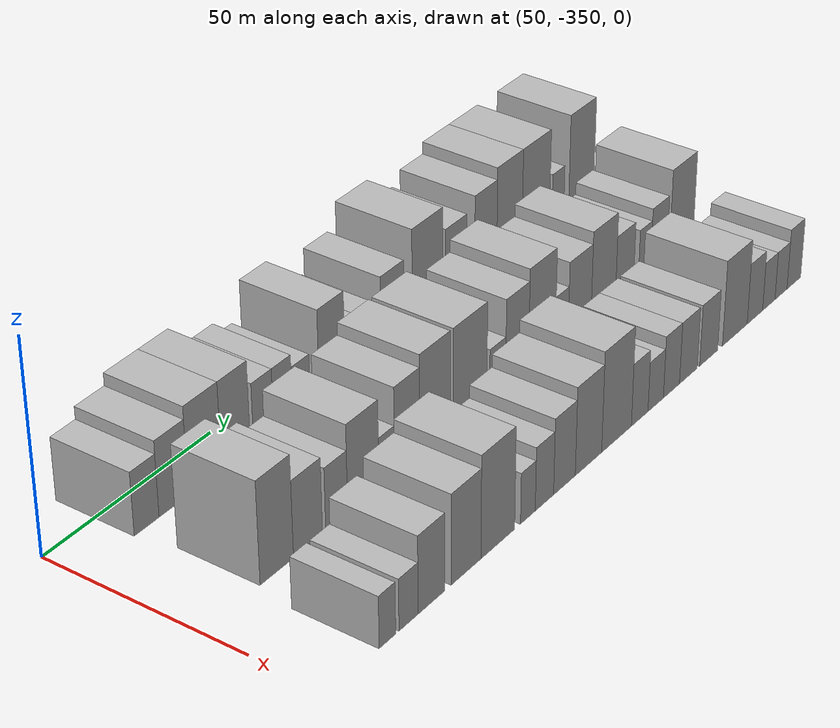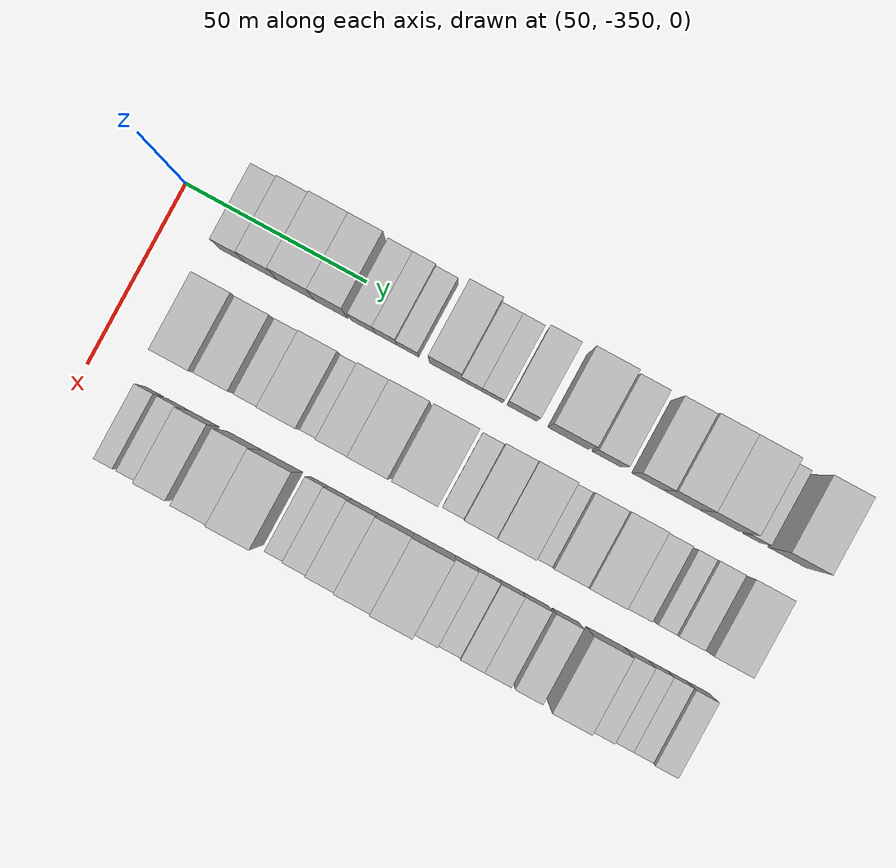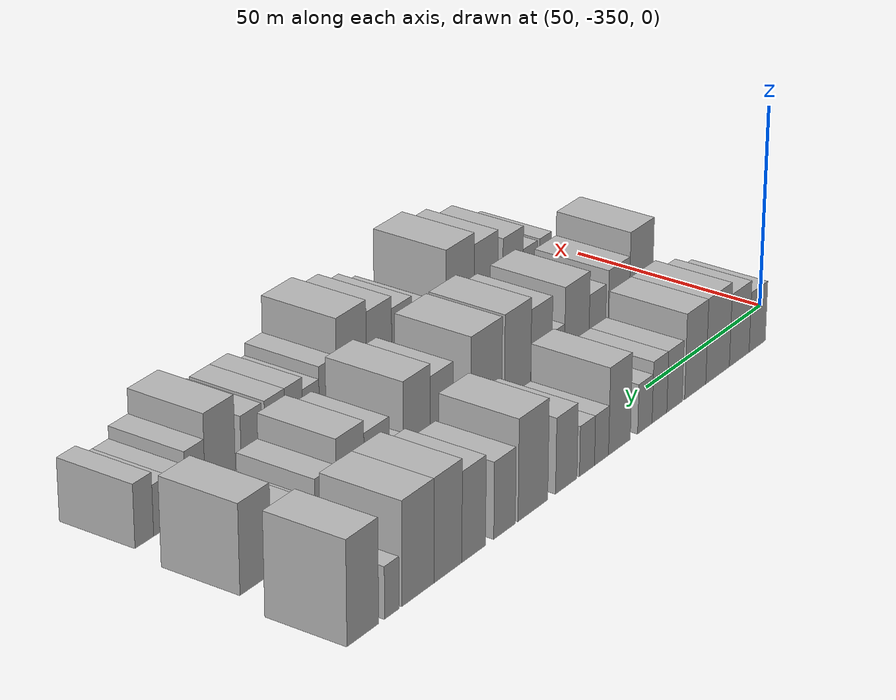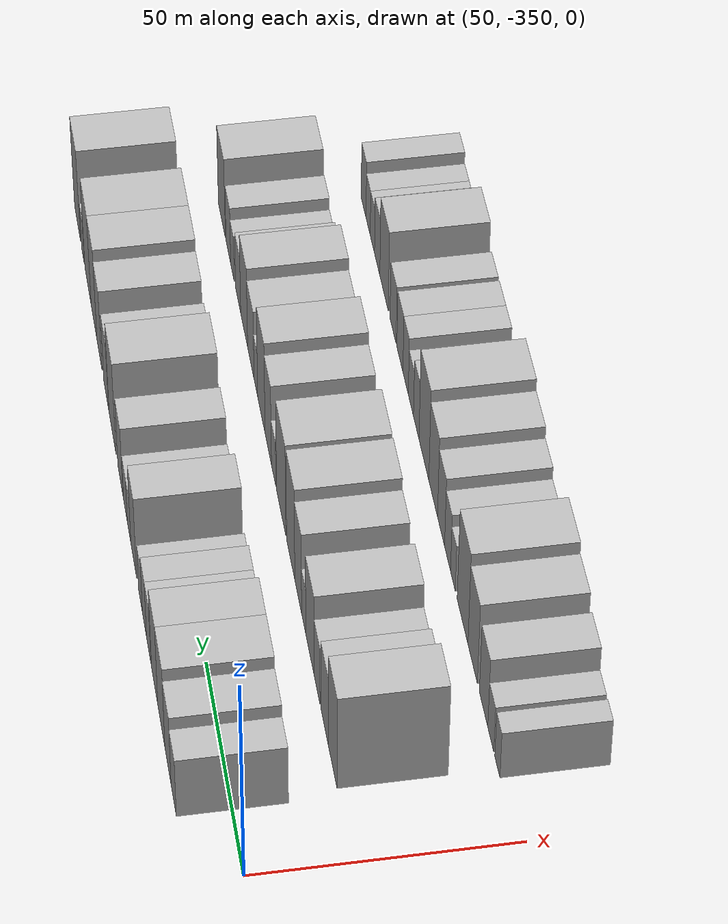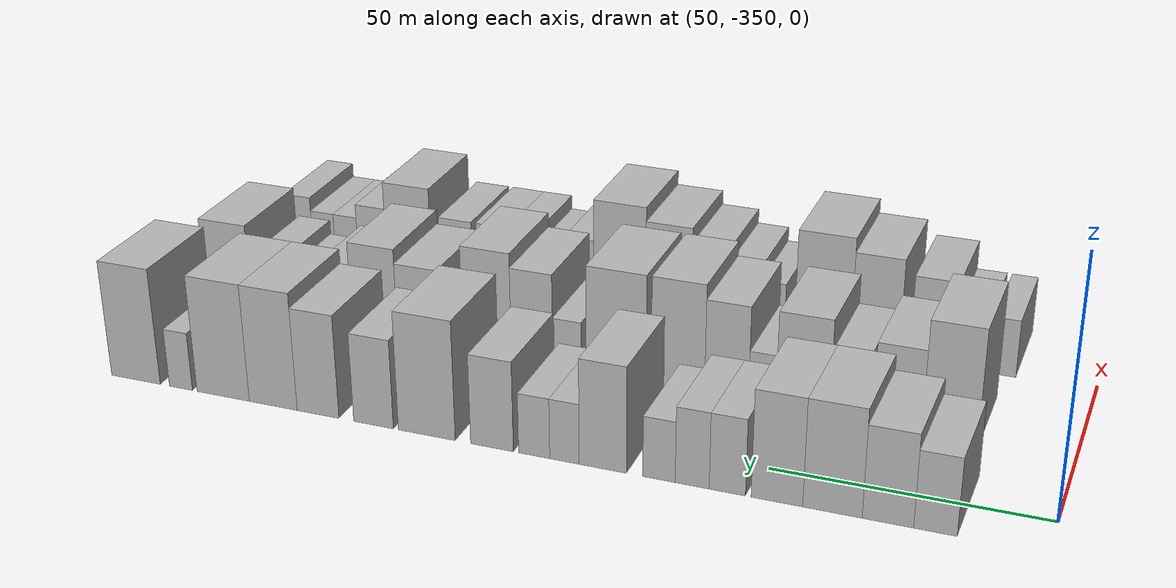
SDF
<sdf version="1.6">
 <world name="default">
  <model name="building_1">
   <static>1</static>
   <pose>50.0000 -331.3577 0 0.000000 0.000000 0.000000</pose>
   <link name="link">
    <pose>0 0 7.50 0 0 0</pose>
    <collision name="collision"><geometry><box><size>20.0000 7.2847 15.0000</size></box></geometry></collision>
    <visual name="visual">
     <cast_shadows>0</cast_shadows>
     <geometry><box><size>20.0000 7.2847 15.0000</size></box></geometry>
     <material>
      <script>
       <uri>model://HANNAS_wall/materials/scripts</uri>
       <uri>model://HANNAS_wall/materials/textures</uri>
       <name>vrc/HANNAS_wall</name>
      </script>
     </material>
    </visual>
   </link>
  </model>
  <model name="building_2">
   <static>1</static>
   <pose>50.0000 -323.3517 0 0.000000 0.000000 0.000000</pose>
   <link name="link">
    <pose>0 0 9.00 0 0 0</pose>
    <collision name="collision"><geometry><box><size>20.0000 8.7272 18.0000</size></box></geometry></collision>
    <visual name="visual">
     <cast_shadows>0</cast_shadows>
     <geometry><box><size>20.0000 8.7272 18.0000</size></box></geometry>
     <material>
      <script>
       <uri>model://HANNAS_wall/materials/scripts</uri>
       <uri>model://HANNAS_wall/materials/textures</uri>
       <name>vrc/HANNAS_wall</name>
      </script>
     </material>
    </visual>
   </link>
  </model>
  <model name="building_3">
   <static>1</static>
   <pose>50.0000 -313.8566 0 0.000000 0.000000 0.000000</pose>
   <link name="link">
    <pose>0 0 10.50 0 0 0</pose>
    <collision name="collision"><geometry><box><size>20.0000 10.2631 21.0000</size></box></geometry></collision>
    <visual name="visual">
     <cast_shadows>0</cast_shadows>
     <geometry><box><size>20.0000 10.2631 21.0000</size></box></geometry>
     <material>
      <script>
       <uri>model://HANNAS_wall/materials/scripts</uri>
       <uri>model://HANNAS_wall/materials/textures</uri>
       <name>vrc/HANNAS_wall</name>
      </script>
     </material>
    </visual>
   </link>
  </model>
  <model name="building_4">
   <static>1</static>
   <pose>50.0000 -304.1938 0 0.000000 0.000000 0.000000</pose>
   <link name="link">
    <pose>0 0 10.50 0 0 0</pose>
    <collision name="collision"><geometry><box><size>20.0000 9.0625 21.0000</size></box></geometry></collision>
    <visual name="visual">
     <cast_shadows>0</cast_shadows>
     <geometry><box><size>20.0000 9.0625 21.0000</size></box></geometry>
     <material>
      <script>
       <uri>model://HANNAS_wall/materials/scripts</uri>
       <uri>model://HANNAS_wall/materials/textures</uri>
       <name>vrc/HANNAS_wall</name>
      </script>
     </material>
    </visual>
   </link>
  </model>
  <model name="building_5">
   <static>1</static>
   <pose>50.0000 -295.4204 0 0.000000 0.000000 0.000000</pose>
   <link name="link">
    <pose>0 0 7.50 0 0 0</pose>
    <collision name="collision"><geometry><box><size>20.0000 6.4842 15.0000</size></box></geometry></collision>
    <visual name="visual">
     <cast_shadows>0</cast_shadows>
     <geometry><box><size>20.0000 6.4842 15.0000</size></box></geometry>
     <material>
      <script>
       <uri>model://HANNAS_wall/materials/scripts</uri>
       <uri>model://HANNAS_wall/materials/textures</uri>
       <name>vrc/HANNAS_wall</name>
      </script>
     </material>
    </visual>
   </link>
  </model>
  <model name="building_6">
   <static>1</static>
   <pose>50.0000 -289.1117 0 0.000000 0.000000 0.000000</pose>
   <link name="link">
    <pose>0 0 7.50 0 0 0</pose>
    <collision name="collision"><geometry><box><size>20.0000 6.1332 15.0000</size></box></geometry></collision>
    <visual name="visual">
     <cast_shadows>0</cast_shadows>
     <geometry><box><size>20.0000 6.1332 15.0000</size></box></geometry>
     <material>
      <script>
       <uri>model://HANNAS_wall/materials/scripts</uri>
       <uri>model://HANNAS_wall/materials/textures</uri>
       <name>vrc/HANNAS_wall</name>
      </script>
     </material>
    </visual>
   </link>
  </model>
  <model name="building_7">
   <static>1</static>
   <pose>50.0000 -283.0841 0 0.000000 0.000000 0.000000</pose>
   <link name="link">
    <pose>0 0 6.00 0 0 0</pose>
    <collision name="collision"><geometry><box><size>20.0000 5.9221 12.0000</size></box></geometry></collision>
    <visual name="visual">
     <cast_shadows>0</cast_shadows>
     <geometry><box><size>20.0000 5.9221 12.0000</size></box></geometry>
     <material>
      <script>
       <uri>model://HANNAS_wall/materials/scripts</uri>
       <uri>model://HANNAS_wall/materials/textures</uri>
       <name>vrc/HANNAS_wall</name>
      </script>
     </material>
    </visual>
   </link>
  </model>
  <model name="building_8">
   <static>1</static>
   <pose>50.0000 -272.7275 0 0.000000 0.000000 0.000000</pose>
   <link name="link">
    <pose>0 0 10.50 0 0 0</pose>
    <collision name="collision"><geometry><box><size>20.0000 8.7911 21.0000</size></box></geometry></collision>
    <visual name="visual">
     <cast_shadows>0</cast_shadows>
     <geometry><box><size>20.0000 8.7911 21.0000</size></box></geometry>
     <material>
      <script>
       <uri>model://HANNAS_wall/materials/scripts</uri>
       <uri>model://HANNAS_wall/materials/textures</uri>
       <name>vrc/HANNAS_wall</name>
      </script>
     </material>
    </visual>
   </link>
  </model>
  <model name="building_9">
   <static>1</static>
   <pose>50.0000 -265.5425 0 0.000000 0.000000 0.000000</pose>
   <link name="link">
    <pose>0 0 6.00 0 0 0</pose>
    <collision name="collision"><geometry><box><size>20.0000 5.5788 12.0000</size></box></geometry></collision>
    <visual name="visual">
     <cast_shadows>0</cast_shadows>
     <geometry><box><size>20.0000 5.5788 12.0000</size></box></geometry>
     <material>
      <script>
       <uri>model://HANNAS_wall/materials/scripts</uri>
       <uri>model://HANNAS_wall/materials/textures</uri>
       <name>vrc/HANNAS_wall</name>
      </script>
     </material>
    </visual>
   </link>
  </model>
  <model name="building_10">
   <static>1</static>
   <pose>50.0000 -259.7928 0 0.000000 0.000000 0.000000</pose>
   <link name="link">
    <pose>0 0 6.00 0 0 0</pose>
    <collision name="collision"><geometry><box><size>20.0000 5.9206 12.0000</size></box></geometry></collision>
    <visual name="visual">
     <cast_shadows>0</cast_shadows>
     <geometry><box><size>20.0000 5.9206 12.0000</size></box></geometry>
     <material>
      <script>
       <uri>model://HANNAS_wall/materials/scripts</uri>
       <uri>model://HANNAS_wall/materials/textures</uri>
       <name>vrc/HANNAS_wall</name>
      </script>
     </material>
    </visual>
   </link>
  </model>
  <model name="building_11">
   <static>1</static>
   <pose>50.0000 -251.6989 0 0.000000 0.000000 0.000000</pose>
   <link name="link">
    <pose>0 0 9.00 0 0 0</pose>
    <collision name="collision"><geometry><box><size>20.0000 8.2673 18.0000</size></box></geometry></collision>
    <visual name="visual">
     <cast_shadows>0</cast_shadows>
     <geometry><box><size>20.0000 8.2673 18.0000</size></box></geometry>
     <material>
      <script>
       <uri>model://HANNAS_wall/materials/scripts</uri>
       <uri>model://HANNAS_wall/materials/textures</uri>
       <name>vrc/HANNAS_wall</name>
      </script>
     </material>
    </visual>
   </link>
  </model>
  <model name="building_12">
   <static>1</static>
   <pose>50.0000 -238.9440 0 0.000000 0.000000 0.000000</pose>
   <link name="link">
    <pose>0 0 12.00 0 0 0</pose>
    <collision name="collision"><geometry><box><size>20.0000 11.2425 24.0000</size></box></geometry></collision>
    <visual name="visual">
     <cast_shadows>0</cast_shadows>
     <geometry><box><size>20.0000 11.2425 24.0000</size></box></geometry>
     <material>
      <script>
       <uri>model://HANNAS_wall/materials/scripts</uri>
       <uri>model://HANNAS_wall/materials/textures</uri>
       <name>vrc/HANNAS_wall</name>
      </script>
     </material>
    </visual>
   </link>
  </model>
  <model name="building_13">
   <static>1</static>
   <pose>50.0000 -228.3245 0 0.000000 0.000000 0.000000</pose>
   <link name="link">
    <pose>0 0 9.00 0 0 0</pose>
    <collision name="collision"><geometry><box><size>20.0000 7.9965 18.0000</size></box></geometry></collision>
    <visual name="visual">
     <cast_shadows>0</cast_shadows>
     <geometry><box><size>20.0000 7.9965 18.0000</size></box></geometry>
     <material>
      <script>
       <uri>model://HANNAS_wall/materials/scripts</uri>
       <uri>model://HANNAS_wall/materials/textures</uri>
       <name>vrc/HANNAS_wall</name>
      </script>
     </material>
    </visual>
   </link>
  </model>
  <model name="building_14">
   <static>1</static>
   <pose>50.0000 -217.0393 0 0.000000 0.000000 0.000000</pose>
   <link name="link">
    <pose>0 0 10.50 0 0 0</pose>
    <collision name="collision"><geometry><box><size>20.0000 8.5739 21.0000</size></box></geometry></collision>
    <visual name="visual">
     <cast_shadows>0</cast_shadows>
     <geometry><box><size>20.0000 8.5739 21.0000</size></box></geometry>
     <material>
      <script>
       <uri>model://HANNAS_wall/materials/scripts</uri>
       <uri>model://HANNAS_wall/materials/textures</uri>
       <name>vrc/HANNAS_wall</name>
      </script>
     </material>
    </visual>
   </link>
  </model>
  <model name="building_15">
   <static>1</static>
   <pose>50.0000 -207.7493 0 0.000000 0.000000 0.000000</pose>
   <link name="link">
    <pose>0 0 12.00 0 0 0</pose>
    <collision name="collision"><geometry><box><size>20.0000 10.0060 24.0000</size></box></geometry></collision>
    <visual name="visual">
     <cast_shadows>0</cast_shadows>
     <geometry><box><size>20.0000 10.0060 24.0000</size></box></geometry>
     <material>
      <script>
       <uri>model://HANNAS_wall/materials/scripts</uri>
       <uri>model://HANNAS_wall/materials/textures</uri>
       <name>vrc/HANNAS_wall</name>
      </script>
     </material>
    </visual>
   </link>
  </model>
  <model name="building_16">
   <static>1</static>
   <pose>50.0000 -197.1931 0 0.000000 0.000000 0.000000</pose>
   <link name="link">
    <pose>0 0 12.00 0 0 0</pose>
    <collision name="collision"><geometry><box><size>20.0000 11.1064 24.0000</size></box></geometry></collision>
    <visual name="visual">
     <cast_shadows>0</cast_shadows>
     <geometry><box><size>20.0000 11.1064 24.0000</size></box></geometry>
     <material>
      <script>
       <uri>model://HANNAS_wall/materials/scripts</uri>
       <uri>model://HANNAS_wall/materials/textures</uri>
       <name>vrc/HANNAS_wall</name>
      </script>
     </material>
    </visual>
   </link>
  </model>
  <model name="building_17">
   <static>1</static>
   <pose>50.0000 -188.1655 0 0.000000 0.000000 0.000000</pose>
   <link name="link">
    <pose>0 0 6.00 0 0 0</pose>
    <collision name="collision"><geometry><box><size>20.0000 4.9488 12.0000</size></box></geometry></collision>
    <visual name="visual">
     <cast_shadows>0</cast_shadows>
     <geometry><box><size>20.0000 4.9488 12.0000</size></box></geometry>
     <material>
      <script>
       <uri>model://HANNAS_wall/materials/scripts</uri>
       <uri>model://HANNAS_wall/materials/textures</uri>
       <name>vrc/HANNAS_wall</name>
      </script>
     </material>
    </visual>
   </link>
  </model>
  <model name="building_18">
   <static>1</static>
   <pose>50.0000 -178.3709 0 0.000000 0.000000 0.000000</pose>
   <link name="link">
    <pose>0 0 12.00 0 0 0</pose>
    <collision name="collision"><geometry><box><size>20.0000 10.6405 24.0000</size></box></geometry></collision>
    <visual name="visual">
     <cast_shadows>0</cast_shadows>
     <geometry><box><size>20.0000 10.6405 24.0000</size></box></geometry>
     <material>
      <script>
       <uri>model://HANNAS_wall/materials/scripts</uri>
       <uri>model://HANNAS_wall/materials/textures</uri>
       <name>vrc/HANNAS_wall</name>
      </script>
     </material>
    </visual>
   </link>
  </model>
  <model name="building_77">
   <static>1</static>
   <pose>79.0000 -327.9480 0 0.000000 0.000000 0.000000</pose>
   <link name="link">
    <pose>0 0 12.00 0 0 0</pose>
    <collision name="collision"><geometry><box><size>20.0000 10.1040 24.0000</size></box></geometry></collision>
    <visual name="visual">
     <cast_shadows>0</cast_shadows>
     <geometry><box><size>20.0000 10.1040 24.0000</size></box></geometry>
     <material>
      <script>
       <uri>model://HANNAS_wall/materials/scripts</uri>
       <uri>model://HANNAS_wall/materials/textures</uri>
       <name>vrc/HANNAS_wall</name>
      </script>
     </material>
    </visual>
   </link>
  </model>
  <model name="building_78">
   <static>1</static>
   <pose>79.0000 -318.4048 0 0.000000 0.000000 0.000000</pose>
   <link name="link">
    <pose>0 0 9.00 0 0 0</pose>
    <collision name="collision"><geometry><box><size>20.0000 8.9824 18.0000</size></box></geometry></collision>
    <visual name="visual">
     <cast_shadows>0</cast_shadows>
     <geometry><box><size>20.0000 8.9824 18.0000</size></box></geometry>
     <material>
      <script>
       <uri>model://HANNAS_wall/materials/scripts</uri>
       <uri>model://HANNAS_wall/materials/textures</uri>
       <name>vrc/HANNAS_wall</name>
      </script>
     </material>
    </visual>
   </link>
  </model>
  <model name="building_79">
   <static>1</static>
   <pose>79.0000 -309.4209 0 0.000000 0.000000 0.000000</pose>
   <link name="link">
    <pose>0 0 7.50 0 0 0</pose>
    <collision name="collision"><geometry><box><size>20.0000 6.9855 15.0000</size></box></geometry></collision>
    <visual name="visual">
     <cast_shadows>0</cast_shadows>
     <geometry><box><size>20.0000 6.9855 15.0000</size></box></geometry>
     <material>
      <script>
       <uri>model://HANNAS_wall/materials/scripts</uri>
       <uri>model://HANNAS_wall/materials/textures</uri>
       <name>vrc/HANNAS_wall</name>
      </script>
     </material>
    </visual>
   </link>
  </model>
  <model name="building_80">
   <static>1</static>
   <pose>79.0000 -300.8569 0 0.000000 0.000000 0.000000</pose>
   <link name="link">
    <pose>0 0 10.50 0 0 0</pose>
    <collision name="collision"><geometry><box><size>20.0000 10.1425 21.0000</size></box></geometry></collision>
    <visual name="visual">
     <cast_shadows>0</cast_shadows>
     <geometry><box><size>20.0000 10.1425 21.0000</size></box></geometry>
     <material>
      <script>
       <uri>model://HANNAS_wall/materials/scripts</uri>
       <uri>model://HANNAS_wall/materials/textures</uri>
       <name>vrc/HANNAS_wall</name>
      </script>
     </material>
    </visual>
   </link>
  </model>
  <model name="building_81">
   <static>1</static>
   <pose>79.0000 -293.1982 0 0.000000 0.000000 0.000000</pose>
   <link name="link">
    <pose>0 0 6.00 0 0 0</pose>
    <collision name="collision"><geometry><box><size>20.0000 5.1748 12.0000</size></box></geometry></collision>
    <visual name="visual">
     <cast_shadows>0</cast_shadows>
     <geometry><box><size>20.0000 5.1748 12.0000</size></box></geometry>
     <material>
      <script>
       <uri>model://HANNAS_wall/materials/scripts</uri>
       <uri>model://HANNAS_wall/materials/textures</uri>
       <name>vrc/HANNAS_wall</name>
      </script>
     </material>
    </visual>
   </link>
  </model>
  <model name="building_82">
   <static>1</static>
   <pose>79.0000 -286.3740 0 0.000000 0.000000 0.000000</pose>
   <link name="link">
    <pose>0 0 10.50 0 0 0</pose>
    <collision name="collision"><geometry><box><size>20.0000 8.4737 21.0000</size></box></geometry></collision>
    <visual name="visual">
     <cast_shadows>0</cast_shadows>
     <geometry><box><size>20.0000 8.4737 21.0000</size></box></geometry>
     <material>
      <script>
       <uri>model://HANNAS_wall/materials/scripts</uri>
       <uri>model://HANNAS_wall/materials/textures</uri>
       <name>vrc/HANNAS_wall</name>
      </script>
     </material>
    </visual>
   </link>
  </model>
  <model name="building_83">
   <static>1</static>
   <pose>79.0000 -276.9082 0 0.000000 0.000000 0.000000</pose>
   <link name="link">
    <pose>0 0 12.00 0 0 0</pose>
    <collision name="collision"><geometry><box><size>20.0000 10.4578 24.0000</size></box></geometry></collision>
    <visual name="visual">
     <cast_shadows>0</cast_shadows>
     <geometry><box><size>20.0000 10.4578 24.0000</size></box></geometry>
     <material>
      <script>
       <uri>model://HANNAS_wall/materials/scripts</uri>
       <uri>model://HANNAS_wall/materials/textures</uri>
       <name>vrc/HANNAS_wall</name>
      </script>
     </material>
    </visual>
   </link>
  </model>
  <model name="building_84">
   <static>1</static>
   <pose>79.0000 -264.6963 0 0.000000 0.000000 0.000000</pose>
   <link name="link">
    <pose>0 0 12.00 0 0 0</pose>
    <collision name="collision"><geometry><box><size>20.0000 11.9660 24.0000</size></box></geometry></collision>
    <visual name="visual">
     <cast_shadows>0</cast_shadows>
     <geometry><box><size>20.0000 11.9660 24.0000</size></box></geometry>
     <material>
      <script>
       <uri>model://HANNAS_wall/materials/scripts</uri>
       <uri>model://HANNAS_wall/materials/textures</uri>
       <name>vrc/HANNAS_wall</name>
      </script>
     </material>
    </visual>
   </link>
  </model>
  <model name="building_85">
   <static>1</static>
   <pose>79.0000 -254.8175 0 0.000000 0.000000 0.000000</pose>
   <link name="link">
    <pose>0 0 6.00 0 0 0</pose>
    <collision name="collision"><geometry><box><size>20.0000 5.7916 12.0000</size></box></geometry></collision>
    <visual name="visual">
     <cast_shadows>0</cast_shadows>
     <geometry><box><size>20.0000 5.7916 12.0000</size></box></geometry>
     <material>
      <script>
       <uri>model://HANNAS_wall/materials/scripts</uri>
       <uri>model://HANNAS_wall/materials/textures</uri>
       <name>vrc/HANNAS_wall</name>
      </script>
     </material>
    </visual>
   </link>
  </model>
  <model name="building_86">
   <static>1</static>
   <pose>79.0000 -247.6663 0 0.000000 0.000000 0.000000</pose>
   <link name="link">
    <pose>0 0 10.50 0 0 0</pose>
    <collision name="collision"><geometry><box><size>20.0000 8.5108 21.0000</size></box></geometry></collision>
    <visual name="visual">
     <cast_shadows>0</cast_shadows>
     <geometry><box><size>20.0000 8.5108 21.0000</size></box></geometry>
     <material>
      <script>
       <uri>model://HANNAS_wall/materials/scripts</uri>
       <uri>model://HANNAS_wall/materials/textures</uri>
       <name>vrc/HANNAS_wall</name>
      </script>
     </material>
    </visual>
   </link>
  </model>
  <model name="building_87">
   <static>1</static>
   <pose>79.0000 -238.3694 0 0.000000 0.000000 0.000000</pose>
   <link name="link">
    <pose>0 0 12.00 0 0 0</pose>
    <collision name="collision"><geometry><box><size>20.0000 10.0830 24.0000</size></box></geometry></collision>
    <visual name="visual">
     <cast_shadows>0</cast_shadows>
     <geometry><box><size>20.0000 10.0830 24.0000</size></box></geometry>
     <material>
      <script>
       <uri>model://HANNAS_wall/materials/scripts</uri>
       <uri>model://HANNAS_wall/materials/textures</uri>
       <name>vrc/HANNAS_wall</name>
      </script>
     </material>
    </visual>
   </link>
  </model>
  <model name="building_88">
   <static>1</static>
   <pose>79.0000 -230.8226 0 0.000000 0.000000 0.000000</pose>
   <link name="link">
    <pose>0 0 6.00 0 0 0</pose>
    <collision name="collision"><geometry><box><size>20.0000 5.0105 12.0000</size></box></geometry></collision>
    <visual name="visual">
     <cast_shadows>0</cast_shadows>
     <geometry><box><size>20.0000 5.0105 12.0000</size></box></geometry>
     <material>
      <script>
       <uri>model://HANNAS_wall/materials/scripts</uri>
       <uri>model://HANNAS_wall/materials/textures</uri>
       <name>vrc/HANNAS_wall</name>
      </script>
     </material>
    </visual>
   </link>
  </model>
  <model name="building_89">
   <static>1</static>
   <pose>79.0000 -223.8250 0 0.000000 0.000000 0.000000</pose>
   <link name="link">
    <pose>0 0 9.00 0 0 0</pose>
    <collision name="collision"><geometry><box><size>20.0000 8.9848 18.0000</size></box></geometry></collision>
    <visual name="visual">
     <cast_shadows>0</cast_shadows>
     <geometry><box><size>20.0000 8.9848 18.0000</size></box></geometry>
     <material>
      <script>
       <uri>model://HANNAS_wall/materials/scripts</uri>
       <uri>model://HANNAS_wall/materials/textures</uri>
       <name>vrc/HANNAS_wall</name>
      </script>
     </material>
    </visual>
   </link>
  </model>
  <model name="building_90">
   <static>1</static>
   <pose>79.0000 -214.4246 0 0.000000 0.000000 0.000000</pose>
   <link name="link">
    <pose>0 0 10.50 0 0 0</pose>
    <collision name="collision"><geometry><box><size>20.0000 9.8161 21.0000</size></box></geometry></collision>
    <visual name="visual">
     <cast_shadows>0</cast_shadows>
     <geometry><box><size>20.0000 9.8161 21.0000</size></box></geometry>
     <material>
      <script>
       <uri>model://HANNAS_wall/materials/scripts</uri>
       <uri>model://HANNAS_wall/materials/textures</uri>
       <name>vrc/HANNAS_wall</name>
      </script>
     </material>
    </visual>
   </link>
  </model>
  <model name="building_91">
   <static>1</static>
   <pose>79.0000 -205.8289 0 0.000000 0.000000 0.000000</pose>
   <link name="link">
    <pose>0 0 7.50 0 0 0</pose>
    <collision name="collision"><geometry><box><size>20.0000 7.3753 15.0000</size></box></geometry></collision>
    <visual name="visual">
     <cast_shadows>0</cast_shadows>
     <geometry><box><size>20.0000 7.3753 15.0000</size></box></geometry>
     <material>
      <script>
       <uri>model://HANNAS_wall/materials/scripts</uri>
       <uri>model://HANNAS_wall/materials/textures</uri>
       <name>vrc/HANNAS_wall</name>
      </script>
     </material>
    </visual>
   </link>
  </model>
  <model name="building_92">
   <static>1</static>
   <pose>79.0000 -197.6131 0 0.000000 0.000000 0.000000</pose>
   <link name="link">
    <pose>0 0 6.00 0 0 0</pose>
    <collision name="collision"><geometry><box><size>20.0000 5.0563 12.0000</size></box></geometry></collision>
    <visual name="visual">
     <cast_shadows>0</cast_shadows>
     <geometry><box><size>20.0000 5.0563 12.0000</size></box></geometry>
     <material>
      <script>
       <uri>model://HANNAS_wall/materials/scripts</uri>
       <uri>model://HANNAS_wall/materials/textures</uri>
       <name>vrc/HANNAS_wall</name>
      </script>
     </material>
    </visual>
   </link>
  </model>
  <model name="building_93">
   <static>1</static>
   <pose>79.0000 -191.6143 0 0.000000 0.000000 0.000000</pose>
   <link name="link">
    <pose>0 0 7.50 0 0 0</pose>
    <collision name="collision"><geometry><box><size>20.0000 6.9414 15.0000</size></box></geometry></collision>
    <visual name="visual">
     <cast_shadows>0</cast_shadows>
     <geometry><box><size>20.0000 6.9414 15.0000</size></box></geometry>
     <material>
      <script>
       <uri>model://HANNAS_wall/materials/scripts</uri>
       <uri>model://HANNAS_wall/materials/textures</uri>
       <name>vrc/HANNAS_wall</name>
      </script>
     </material>
    </visual>
   </link>
  </model>
  <model name="building_94">
   <static>1</static>
   <pose>79.0000 -181.9602 0 0.000000 0.000000 0.000000</pose>
   <link name="link">
    <pose>0 0 10.50 0 0 0</pose>
    <collision name="collision"><geometry><box><size>20.0000 10.3668 21.0000</size></box></geometry></collision>
    <visual name="visual">
     <cast_shadows>0</cast_shadows>
     <geometry><box><size>20.0000 10.3668 21.0000</size></box></geometry>
     <material>
      <script>
       <uri>model://HANNAS_wall/materials/scripts</uri>
       <uri>model://HANNAS_wall/materials/textures</uri>
       <name>vrc/HANNAS_wall</name>
      </script>
     </material>
    </visual>
   </link>
  </model>
  <model name="building_153">
   <static>1</static>
   <pose>108.0000 -332.4731 0 0.000000 0.000000 0.000000</pose>
   <link name="link">
    <pose>0 0 6.00 0 0 0</pose>
    <collision name="collision"><geometry><box><size>20.0000 5.0538 12.0000</size></box></geometry></collision>
    <visual name="visual">
     <cast_shadows>0</cast_shadows>
     <geometry><box><size>20.0000 5.0538 12.0000</size></box></geometry>
     <material>
      <script>
       <uri>model://HANNAS_wall/materials/scripts</uri>
       <uri>model://HANNAS_wall/materials/textures</uri>
       <name>vrc/HANNAS_wall</name>
      </script>
     </material>
    </visual>
   </link>
  </model>
  <model name="building_154">
   <static>1</static>
   <pose>108.0000 -325.9662 0 0.000000 0.000000 0.000000</pose>
   <link name="link">
    <pose>0 0 6.00 0 0 0</pose>
    <collision name="collision"><geometry><box><size>20.0000 5.9600 12.0000</size></box></geometry></collision>
    <visual name="visual">
     <cast_shadows>0</cast_shadows>
     <geometry><box><size>20.0000 5.9600 12.0000</size></box></geometry>
     <material>
      <script>
       <uri>model://HANNAS_wall/materials/scripts</uri>
       <uri>model://HANNAS_wall/materials/textures</uri>
       <name>vrc/HANNAS_wall</name>
      </script>
     </material>
    </visual>
   </link>
  </model>
  <model name="building_155">
   <static>1</static>
   <pose>108.0000 -318.7284 0 0.000000 0.000000 0.000000</pose>
   <link name="link">
    <pose>0 0 9.00 0 0 0</pose>
    <collision name="collision"><geometry><box><size>20.0000 8.5156 18.0000</size></box></geometry></collision>
    <visual name="visual">
     <cast_shadows>0</cast_shadows>
     <geometry><box><size>20.0000 8.5156 18.0000</size></box></geometry>
     <material>
      <script>
       <uri>model://HANNAS_wall/materials/scripts</uri>
       <uri>model://HANNAS_wall/materials/textures</uri>
       <name>vrc/HANNAS_wall</name>
      </script>
     </material>
    </visual>
   </link>
  </model>
  <model name="building_156">
   <static>1</static>
   <pose>108.0000 -307.6199 0 0.000000 0.000000 0.000000</pose>
   <link name="link">
    <pose>0 0 10.50 0 0 0</pose>
    <collision name="collision"><geometry><box><size>20.0000 9.7013 21.0000</size></box></geometry></collision>
    <visual name="visual">
     <cast_shadows>0</cast_shadows>
     <geometry><box><size>20.0000 9.7013 21.0000</size></box></geometry>
     <material>
      <script>
       <uri>model://HANNAS_wall/materials/scripts</uri>
       <uri>model://HANNAS_wall/materials/textures</uri>
       <name>vrc/HANNAS_wall</name>
      </script>
     </material>
    </visual>
   </link>
  </model>
  <model name="building_157">
   <static>1</static>
   <pose>108.0000 -297.1060 0 0.000000 0.000000 0.000000</pose>
   <link name="link">
    <pose>0 0 12.00 0 0 0</pose>
    <collision name="collision"><geometry><box><size>20.0000 11.3266 24.0000</size></box></geometry></collision>
    <visual name="visual">
     <cast_shadows>0</cast_shadows>
     <geometry><box><size>20.0000 11.3266 24.0000</size></box></geometry>
     <material>
      <script>
       <uri>model://HANNAS_wall/materials/scripts</uri>
       <uri>model://HANNAS_wall/materials/textures</uri>
       <name>vrc/HANNAS_wall</name>
      </script>
     </material>
    </visual>
   </link>
  </model>
  <model name="building_158">
   <static>1</static>
   <pose>108.0000 -286.8947 0 0.000000 0.000000 0.000000</pose>
   <link name="link">
    <pose>0 0 6.00 0 0 0</pose>
    <collision name="collision"><geometry><box><size>20.0000 5.0960 12.0000</size></box></geometry></collision>
    <visual name="visual">
     <cast_shadows>0</cast_shadows>
     <geometry><box><size>20.0000 5.0960 12.0000</size></box></geometry>
     <material>
      <script>
       <uri>model://HANNAS_wall/materials/scripts</uri>
       <uri>model://HANNAS_wall/materials/textures</uri>
       <name>vrc/HANNAS_wall</name>
      </script>
     </material>
    </visual>
   </link>
  </model>
  <model name="building_159">
   <static>1</static>
   <pose>108.0000 -281.1329 0 0.000000 0.000000 0.000000</pose>
   <link name="link">
    <pose>0 0 7.50 0 0 0</pose>
    <collision name="collision"><geometry><box><size>20.0000 6.4278 15.0000</size></box></geometry></collision>
    <visual name="visual">
     <cast_shadows>0</cast_shadows>
     <geometry><box><size>20.0000 6.4278 15.0000</size></box></geometry>
     <material>
      <script>
       <uri>model://HANNAS_wall/materials/scripts</uri>
       <uri>model://HANNAS_wall/materials/textures</uri>
       <name>vrc/HANNAS_wall</name>
      </script>
     </material>
    </visual>
   </link>
  </model>
  <model name="building_160">
   <static>1</static>
   <pose>108.0000 -274.0558 0 0.000000 0.000000 0.000000</pose>
   <link name="link">
    <pose>0 0 9.00 0 0 0</pose>
    <collision name="collision"><geometry><box><size>20.0000 7.7263 18.0000</size></box></geometry></collision>
    <visual name="visual">
     <cast_shadows>0</cast_shadows>
     <geometry><box><size>20.0000 7.7263 18.0000</size></box></geometry>
     <material>
      <script>
       <uri>model://HANNAS_wall/materials/scripts</uri>
       <uri>model://HANNAS_wall/materials/textures</uri>
       <name>vrc/HANNAS_wall</name>
      </script>
     </material>
    </visual>
   </link>
  </model>
  <model name="building_161">
   <static>1</static>
   <pose>108.0000 -265.3739 0 0.000000 0.000000 0.000000</pose>
   <link name="link">
    <pose>0 0 10.50 0 0 0</pose>
    <collision name="collision"><geometry><box><size>20.0000 9.6374 21.0000</size></box></geometry></collision>
    <visual name="visual">
     <cast_shadows>0</cast_shadows>
     <geometry><box><size>20.0000 9.6374 21.0000</size></box></geometry>
     <material>
      <script>
       <uri>model://HANNAS_wall/materials/scripts</uri>
       <uri>model://HANNAS_wall/materials/textures</uri>
       <name>vrc/HANNAS_wall</name>
      </script>
     </material>
    </visual>
   </link>
  </model>
  <model name="building_162">
   <static>1</static>
   <pose>108.0000 -254.9927 0 0.000000 0.000000 0.000000</pose>
   <link name="link">
    <pose>0 0 12.00 0 0 0</pose>
    <collision name="collision"><geometry><box><size>20.0000 11.1252 24.0000</size></box></geometry></collision>
    <visual name="visual">
     <cast_shadows>0</cast_shadows>
     <geometry><box><size>20.0000 11.1252 24.0000</size></box></geometry>
     <material>
      <script>
       <uri>model://HANNAS_wall/materials/scripts</uri>
       <uri>model://HANNAS_wall/materials/textures</uri>
       <name>vrc/HANNAS_wall</name>
      </script>
     </material>
    </visual>
   </link>
  </model>
  <model name="building_163">
   <static>1</static>
   <pose>108.0000 -246.2499 0 0.000000 0.000000 0.000000</pose>
   <link name="link">
    <pose>0 0 7.50 0 0 0</pose>
    <collision name="collision"><geometry><box><size>20.0000 6.3603 15.0000</size></box></geometry></collision>
    <visual name="visual">
     <cast_shadows>0</cast_shadows>
     <geometry><box><size>20.0000 6.3603 15.0000</size></box></geometry>
     <material>
      <script>
       <uri>model://HANNAS_wall/materials/scripts</uri>
       <uri>model://HANNAS_wall/materials/textures</uri>
       <name>vrc/HANNAS_wall</name>
      </script>
     </material>
    </visual>
   </link>
  </model>
  <model name="building_164">
   <static>1</static>
   <pose>108.0000 -240.0701 0 0.000000 0.000000 0.000000</pose>
   <link name="link">
    <pose>0 0 6.00 0 0 0</pose>
    <collision name="collision"><geometry><box><size>20.0000 5.9994 12.0000</size></box></geometry></collision>
    <visual name="visual">
     <cast_shadows>0</cast_shadows>
     <geometry><box><size>20.0000 5.9994 12.0000</size></box></geometry>
     <material>
      <script>
       <uri>model://HANNAS_wall/materials/scripts</uri>
       <uri>model://HANNAS_wall/materials/textures</uri>
       <name>vrc/HANNAS_wall</name>
      </script>
     </material>
    </visual>
   </link>
  </model>
  <model name="building_165">
   <static>1</static>
   <pose>108.0000 -233.9011 0 0.000000 0.000000 0.000000</pose>
   <link name="link">
    <pose>0 0 7.50 0 0 0</pose>
    <collision name="collision"><geometry><box><size>20.0000 6.3385 15.0000</size></box></geometry></collision>
    <visual name="visual">
     <cast_shadows>0</cast_shadows>
     <geometry><box><size>20.0000 6.3385 15.0000</size></box></geometry>
     <material>
      <script>
       <uri>model://HANNAS_wall/materials/scripts</uri>
       <uri>model://HANNAS_wall/materials/textures</uri>
       <name>vrc/HANNAS_wall</name>
      </script>
     </material>
    </visual>
   </link>
  </model>
  <model name="building_166">
   <static>1</static>
   <pose>108.0000 -227.1811 0 0.000000 0.000000 0.000000</pose>
   <link name="link">
    <pose>0 0 7.50 0 0 0</pose>
    <collision name="collision"><geometry><box><size>20.0000 7.1015 15.0000</size></box></geometry></collision>
    <visual name="visual">
     <cast_shadows>0</cast_shadows>
     <geometry><box><size>20.0000 7.1015 15.0000</size></box></geometry>
     <material>
      <script>
       <uri>model://HANNAS_wall/materials/scripts</uri>
       <uri>model://HANNAS_wall/materials/textures</uri>
       <name>vrc/HANNAS_wall</name>
      </script>
     </material>
    </visual>
   </link>
  </model>
  <model name="building_167">
   <static>1</static>
   <pose>108.0000 -218.9579 0 0.000000 0.000000 0.000000</pose>
   <link name="link">
    <pose>0 0 7.50 0 0 0</pose>
    <collision name="collision"><geometry><box><size>20.0000 7.3449 15.0000</size></box></geometry></collision>
    <visual name="visual">
     <cast_shadows>0</cast_shadows>
     <geometry><box><size>20.0000 7.3449 15.0000</size></box></geometry>
     <material>
      <script>
       <uri>model://HANNAS_wall/materials/scripts</uri>
       <uri>model://HANNAS_wall/materials/textures</uri>
       <name>vrc/HANNAS_wall</name>
      </script>
     </material>
    </visual>
   </link>
  </model>
  <model name="building_168">
   <static>1</static>
   <pose>108.0000 -208.0972 0 0.000000 0.000000 0.000000</pose>
   <link name="link">
    <pose>0 0 10.50 0 0 0</pose>
    <collision name="collision"><geometry><box><size>20.0000 10.3765 21.0000</size></box></geometry></collision>
    <visual name="visual">
     <cast_shadows>0</cast_shadows>
     <geometry><box><size>20.0000 10.3765 21.0000</size></box></geometry>
     <material>
      <script>
       <uri>model://HANNAS_wall/materials/scripts</uri>
       <uri>model://HANNAS_wall/materials/textures</uri>
       <name>vrc/HANNAS_wall</name>
      </script>
     </material>
    </visual>
   </link>
  </model>
  <model name="building_169">
   <static>1</static>
   <pose>108.0000 -199.5922 0 0.000000 0.000000 0.000000</pose>
   <link name="link">
    <pose>0 0 7.50 0 0 0</pose>
    <collision name="collision"><geometry><box><size>20.0000 6.6335 15.0000</size></box></geometry></collision>
    <visual name="visual">
     <cast_shadows>0</cast_shadows>
     <geometry><box><size>20.0000 6.6335 15.0000</size></box></geometry>
     <material>
      <script>
       <uri>model://HANNAS_wall/materials/scripts</uri>
       <uri>model://HANNAS_wall/materials/textures</uri>
       <name>vrc/HANNAS_wall</name>
      </script>
     </material>
    </visual>
   </link>
  </model>
  <model name="building_170">
   <static>1</static>
   <pose>108.0000 -193.5918 0 0.000000 0.000000 0.000000</pose>
   <link name="link">
    <pose>0 0 6.00 0 0 0</pose>
    <collision name="collision"><geometry><box><size>20.0000 5.3674 12.0000</size></box></geometry></collision>
    <visual name="visual">
     <cast_shadows>0</cast_shadows>
     <geometry><box><size>20.0000 5.3674 12.0000</size></box></geometry>
     <material>
      <script>
       <uri>model://HANNAS_wall/materials/scripts</uri>
       <uri>model://HANNAS_wall/materials/textures</uri>
       <name>vrc/HANNAS_wall</name>
      </script>
     </material>
    </visual>
   </link>
  </model>
  <model name="building_171">
   <static>1</static>
   <pose>108.0000 -188.2647 0 0.000000 0.000000 0.000000</pose>
   <link name="link">
    <pose>0 0 6.00 0 0 0</pose>
    <collision name="collision"><geometry><box><size>20.0000 5.2868 12.0000</size></box></geometry></collision>
    <visual name="visual">
     <cast_shadows>0</cast_shadows>
     <geometry><box><size>20.0000 5.2868 12.0000</size></box></geometry>
     <material>
      <script>
       <uri>model://HANNAS_wall/materials/scripts</uri>
       <uri>model://HANNAS_wall/materials/textures</uri>
       <name>vrc/HANNAS_wall</name>
      </script>
     </material>
    </visual>
   </link>
  </model>
  <model name="building_172">
   <static>1</static>
   <pose>108.0000 -182.5695 0 0.000000 0.000000 0.000000</pose>
   <link name="link">
    <pose>0 0 7.50 0 0 0</pose>
    <collision name="collision"><geometry><box><size>20.0000 6.1035 15.0000</size></box></geometry></collision>
    <visual name="visual">
     <cast_shadows>0</cast_shadows>
     <geometry><box><size>20.0000 6.1035 15.0000</size></box></geometry>
     <material>
      <script>
       <uri>model://HANNAS_wall/materials/scripts</uri>
       <uri>model://HANNAS_wall/materials/textures</uri>
       <name>vrc/HANNAS_wall</name>
      </script>
     </material>
    </visual>
   </link>
  </model>
 </world>
</sdf>
